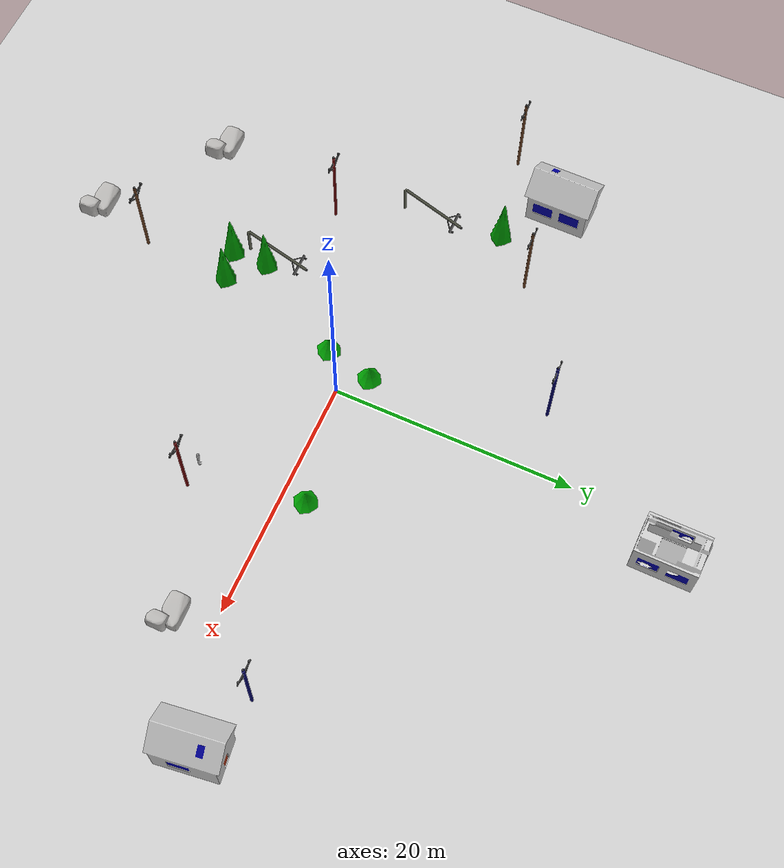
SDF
<sdf version="1.4">
 <world name="mountain_world">
  <physics type="ode"><max_step_size>0.001</max_step_size></physics>
  <scene><sky><clouds><speed>12</speed></clouds></sky></scene>
  <include><uri>model://ground_plane</uri></include>
  <include><uri>model://sun</uri></include>
  <include><name>smallbigtree01</name><uri>model://smallbigtree</uri><pose>-2.0 2.0 0 0 0 0</pose></include>
  <include><name>smallbigtree02</name><uri>model://smallbigtree</uri><pose>-3.0 -2.0 0 0 0 0</pose></include>
  <include><name>smallbigtree03</name><uri>model://smallbigtree</uri><pose>9.59 1.95 0 0 0 0</pose></include>
  <include><name>smalltree01</name><uri>model://smalltree</uri><pose>-5.5 -12.5 0 0 0 0</pose></include>
  <include><name>smalltree02</name><uri>model://smalltree</uri><pose>-8 -10 0 0 0 0</pose></include>
  <include><name>smalltree03</name><uri>model://smalltree</uri><pose>-8 -13 0 0 0 0</pose></include>
  <include><name>smalltree04</name><uri>model://smalltree</uri><pose>-18.5 6.5 0 0 0 0</pose></include>
  <include><name>hugerock01</name><uri>model://hugerock</uri><pose>22 -4 0 0 0 0</pose></include>
  <include><name>hugerock02</name><uri>model://hugerock</uri><pose>-17.02 -19.06 0 0 0 0</pose></include>
  <include><name>hugerock03</name><uri>model://hugerock</uri><pose>-7.55 -26 0 0 0 0</pose></include>
  <include><name>pylon01</name><uri>model://pylon</uri><pose>-26.0 5.0 0 0 0 0</pose></include>
  <include><name>pylon02</name><uri>model://pylon</uri><pose>-15.0 10.0 0 0 0 0</pose></include>
  <include><name>pylon03</name><uri>model://pylon</uri><pose>-6.0 -20.0 0 0 0 0</pose></include>
  <include><name>redpylon01</name><uri>model://redpylon</uri><pose>-15.0 -7.0 0 0 0 0</pose></include>
  <include><name>redpylon02</name><uri>model://redpylon</uri><pose>12 -7.0 0 0 0 0</pose></include>
  <include><name>bluepylon01</name><uri>model://bluepylon</uri><pose>25 5 0 0 0 0</pose></include>
  <include><name>bluepylon02</name><uri>model://bluepylon</uri><pose>-5.0 16.0 0 0 0 0</pose></include>
  <include><name>brokepylon01</name><uri>model://brokepylon</uri><pose>-18.0 -2.0 0 0 0 0</pose></include>
  <include><name>brokepylon02</name><uri>model://brokepylon</uri><pose>-9.0 -12.0 0 0 0 0</pose></include>
  <include><name>busy_genius</name><uri>model://genius</uri><pose>10 -7 0 0 0 10</pose></include>
  <include><name>house01</name><uri>model://house_broken</uri><pose>2.5 28.5 0 0 0 0</pose></include>
  <include><name>victim04</name><uri>model://victim_house</uri><pose>2.5 28.5 0.5 0 0 0</pose></include>
  <include><name>house02</name><uri>model://house</uri><pose>-23.0 10.0 0 0 0 0</pose></include>
  <include><name>house03</name><uri>model://house</uri><pose>29.99 3.0 0 0 0 -3</pose></include>
 </world>
</sdf>

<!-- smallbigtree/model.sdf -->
<sdf version="1.5">
  <model name="smallbigtree_model">
    <static>
      true
    </static>
    <link name="smallbigtree_link">
      <inertial>
        <mass>0.390</mass>
        <inertia>
          <ixx>0.00058</ixx>
          <ixy>0</ixy>
          <ixz>0</ixz>
          <iyy>0.00058</iyy>
          <iyz>0</iyz>
          <izz>0.00019</izz>
        </inertia>
      </inertial>
      <collision name="smallbigtree_collision">
        <geometry>
          <mesh>
            <uri>model://smallbigtree/meshes/smallbigtree.dae</uri>
          </mesh>
        </geometry>
        <surface>
          <friction>
            <ode>
              <mu>1.0</mu>
              <mu2>1.0</mu2>
            </ode>
          </friction>
          <contact>
            <ode>
              <kp>10000000.0</kp>
              <kd>1.0</kd>
              <min_depth>0.001</min_depth>
              <max_vel>0.1</max_vel>
            </ode>
          </contact>
        </surface>
      </collision>
      <visual name="smallbigtree_visual">
        <geometry>
          <mesh>
            <uri>model://smallbigtree/meshes/smallbigtree.dae</uri>
          </mesh>
        </geometry>
      </visual>
    </link>
  </model>
</sdf>

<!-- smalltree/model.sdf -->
<sdf version="1.5">
  <model name="smalltree_model">
    <static>
      true
    </static>
    <link name="smalltree_link">
      <inertial>
        <mass>0.390</mass>
        <inertia>
          <ixx>0.00058</ixx>
          <ixy>0</ixy>
          <ixz>0</ixz>
          <iyy>0.00058</iyy>
          <iyz>0</iyz>
          <izz>0.00019</izz>
        </inertia>
      </inertial>
      <collision name="smalltree_collision">
        <geometry>
          <mesh>
            <uri>model://smalltree/meshes/smalltree.dae</uri>
          </mesh>
        </geometry>
        <surface>
          <friction>
            <ode>
              <mu>1.0</mu>
              <mu2>1.0</mu2>
            </ode>
          </friction>
          <contact>
            <ode>
              <kp>10000000.0</kp>
              <kd>1.0</kd>
              <min_depth>0.001</min_depth>
              <max_vel>0.1</max_vel>
            </ode>
          </contact>
        </surface>
      </collision>
      <visual name="smalltree_visual">
        <geometry>
          <mesh>
            <uri>model://smalltree/meshes/smalltree.dae</uri>
          </mesh>
        </geometry>
      </visual>
    </link>
  </model>
</sdf>

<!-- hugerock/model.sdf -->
<sdf version="1.5">
  <model name="hugerock_model">
    <static>
      true
    </static>
    <link name="hugerock_link">
      <inertial>
        <mass>0.390</mass>
        <inertia>
          <ixx>0.00058</ixx>
          <ixy>0</ixy>
          <ixz>0</ixz>
          <iyy>0.00058</iyy>
          <iyz>0</iyz>
          <izz>0.00019</izz>
        </inertia>
      </inertial>
      <visual name="hugerock_visual">
        <geometry>
          <mesh>
            <uri>model://hugerock/meshes/hugerock.dae</uri>
          </mesh>
        </geometry>
      </visual>
    </link>
  </model>
</sdf>

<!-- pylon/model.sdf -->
<sdf version="1.5">
  <model name="pylon_model">
    <static>
      true
    </static>
    <link name="pylon_link">
      <inertial>
        <mass>0.390</mass>
        <inertia>
          <ixx>0.00058</ixx>
          <ixy>0</ixy>
          <ixz>0</ixz>
          <iyy>0.00058</iyy>
          <iyz>0</iyz>
          <izz>0.00019</izz>
        </inertia>
      </inertial>
      <collision name="pylon_collision">
        <geometry>
          <mesh>
            <uri>model://pylon/meshes/pylon.dae</uri>
          </mesh>
        </geometry>
        <surface>
          <friction>
            <ode>
              <mu>1.0</mu>
              <mu2>1.0</mu2>
            </ode>
          </friction>
          <contact>
            <ode>
              <kp>10000000.0</kp>
              <kd>1.0</kd>
              <min_depth>0.001</min_depth>
              <max_vel>0.1</max_vel>
            </ode>
          </contact>
        </surface>
      </collision>
      <visual name="pylon_visual">
        <geometry>
          <mesh>
            <uri>model://pylon/meshes/pylon.dae</uri>
          </mesh>
        </geometry>
      </visual>
    </link>
  </model>
</sdf>

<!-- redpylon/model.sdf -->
<sdf version="1.5">
  <model name="redpylon_model">
    <static>
      true
    </static>
    <link name="redpylon_link">
      <inertial>
        <mass>0.390</mass>
        <inertia>
          <ixx>0.00058</ixx>
          <ixy>0</ixy>
          <ixz>0</ixz>
          <iyy>0.00058</iyy>
          <iyz>0</iyz>
          <izz>0.00019</izz>
        </inertia>
      </inertial>
      <visual name="redpylon_visual">
        <geometry>
          <mesh>
            <uri>model://redpylon/meshes/redpylon.dae</uri>
          </mesh>
        </geometry>
      </visual>
    </link>
  </model>
</sdf>

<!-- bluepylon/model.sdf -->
<sdf version="1.5">
  <model name="bluepylon_model">
    <static>
      true
    </static>
    <link name="bluepylon_link">
      <inertial>
        <mass>0.390</mass>
        <inertia>
          <ixx>0.00058</ixx>
          <ixy>0</ixy>
          <ixz>0</ixz>
          <iyy>0.00058</iyy>
          <iyz>0</iyz>
          <izz>0.00019</izz>
        </inertia>
      </inertial>
      <visual name="bluepylon_visual">
        <geometry>
          <mesh>
            <uri>model://bluepylon/meshes/bluepylon.dae</uri>
          </mesh>
        </geometry>
      </visual>
    </link>
  </model>
</sdf>

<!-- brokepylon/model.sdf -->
<sdf version="1.5">
  <model name="brokepylon_model">
    <static>
      true
    </static>
    <link name="brokepylon_link">
      <inertial>
        <mass>0.390</mass>
        <inertia>
          <ixx>0.00058</ixx>
          <ixy>0</ixy>
          <ixz>0</ixz>
          <iyy>0.00058</iyy>
          <iyz>0</iyz>
          <izz>0.00019</izz>
        </inertia>
      </inertial>
      <collision name="brokepylon_collision">
        <geometry>
          <mesh>
            <uri>model://brokepylon/meshes/brokepylon.dae</uri>
          </mesh>
        </geometry>
        <surface>
          <friction>
            <ode>
              <mu>1.0</mu>
              <mu2>1.0</mu2>
            </ode>
          </friction>
          <contact>
            <ode>
              <kp>10000000.0</kp>
              <kd>1.0</kd>
              <min_depth>0.001</min_depth>
              <max_vel>0.1</max_vel>
            </ode>
          </contact>
        </surface>
      </collision>
      <visual name="brokepylon_visual">
        <geometry>
          <mesh>
            <uri>model://brokepylon/meshes/brokepylon.dae</uri>
          </mesh>
        </geometry>
      </visual>
    </link>
  </model>
</sdf>

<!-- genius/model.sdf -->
<sdf version="1.5">
  <model name="genius_model">
    <static>
      true
    </static>
    <link name="genius_link">
      <inertial>
        <mass>0.390</mass>
        <inertia>
          <ixx>0.00058</ixx>
          <ixy>0</ixy>
          <ixz>0</ixz>
          <iyy>0.00058</iyy>
          <iyz>0</iyz>
          <izz>0.00019</izz>
        </inertia>
      </inertial>
      <collision name="genius_collision">
        <geometry>
          <mesh>
            <uri>model://genius/meshes/genius.dae</uri>
          </mesh>
        </geometry>
        <surface>
          <friction>
            <ode>
              <mu>1.0</mu>
              <mu2>1.0</mu2>
            </ode>
          </friction>
          <contact>
            <ode>
              <kp>10000000.0</kp>
              <kd>1.0</kd>
              <min_depth>0.001</min_depth>
              <max_vel>0.1</max_vel>
            </ode>
          </contact>
        </surface>
      </collision>
      <visual name="genius_visual">
        <geometry>
          <mesh>
            <uri>model://genius/meshes/genius.dae</uri>
          </mesh>
        </geometry>
      </visual>
    </link>
  </model>
</sdf>

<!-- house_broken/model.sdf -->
<sdf version="1.5">
  <model name="house_broken_model">
    <static>
      true
    </static>
    <link name="house_link">
      <inertial>
        <mass>0.390</mass>
        <inertia>
          <ixx>0.00058</ixx>
          <ixy>0</ixy>
          <ixz>0</ixz>
          <iyy>0.00058</iyy>
          <iyz>0</iyz>
          <izz>0.00019</izz>
        </inertia>
      </inertial>
      <collision name="house_broken_collision">
        <geometry>
          <mesh>
            <uri>model://house_broken/meshes/house_broken.dae</uri>
          </mesh>
        </geometry>
        <surface>
          <friction>
            <ode>
              <mu>1.0</mu>
              <mu2>1.0</mu2>
            </ode>
          </friction>
          <contact>
            <ode>
              <kp>10000000.0</kp>
              <kd>1.0</kd>
              <min_depth>0.001</min_depth>
              <max_vel>0.1</max_vel>
            </ode>
          </contact>
        </surface>
      </collision>
      <visual name="house_broken_visual">
        <geometry>
          <mesh>
            <uri>model://house_broken/meshes/house_broken.dae</uri>
          </mesh>
        </geometry>
      </visual>
    </link>
  </model>
</sdf>

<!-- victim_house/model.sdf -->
<sdf version="1.5">
  <model name="victim_house_model">
    <static>
      true
    </static>
    <link name="victim_house_link">
      <inertial>
        <mass>0.390</mass>
        <inertia>
          <ixx>0.00058</ixx>
          <ixy>0</ixy>
          <ixz>0</ixz>
          <iyy>0.00058</iyy>
          <iyz>0</iyz>
          <izz>0.00019</izz>
        </inertia>
      </inertial>
      <collision name="victim_house_collision">
        <geometry>
          <mesh>
            <uri>model://victim_house/meshes/victim02.dae</uri>
          </mesh>
        </geometry>
        <surface>
          <friction>
            <ode>
              <mu>1.0</mu>
              <mu2>1.0</mu2>
            </ode>
          </friction>
          <contact>
            <ode>
              <kp>10000000.0</kp>
              <kd>1.0</kd>
              <min_depth>0.001</min_depth>
              <max_vel>0.1</max_vel>
            </ode>
          </contact>
        </surface>
      </collision>
      <visual name="victim_house_visual">
        <geometry>
          <mesh>
            <uri>model://victim_house/meshes/victim02.dae</uri>
          </mesh>
        </geometry>
      </visual>
    </link>
  </model>
</sdf>

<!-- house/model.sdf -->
<sdf version="1.5">
  <model name="house_model">
    <static>
      true
    </static>
    <link name="house_link">
      <inertial>
        <mass>0.390</mass>
        <inertia>
          <ixx>0.00058</ixx>
          <ixy>0</ixy>
          <ixz>0</ixz>
          <iyy>0.00058</iyy>
          <iyz>0</iyz>
          <izz>0.00019</izz>
        </inertia>
      </inertial>
      <collision name="house_collision">
        <geometry>
          <mesh>
            <uri>model://house/meshes/house.dae</uri>
          </mesh>
        </geometry>
        <surface>
          <friction>
            <ode>
              <mu>1.0</mu>
              <mu2>1.0</mu2>
            </ode>
          </friction>
          <contact>
            <ode>
              <kp>10000000.0</kp>
              <kd>1.0</kd>
              <min_depth>0.001</min_depth>
              <max_vel>0.1</max_vel>
            </ode>
          </contact>
        </surface>
      </collision>
      <visual name="house_visual">
        <geometry>
          <mesh>
            <uri>model://house/meshes/house.dae</uri>
          </mesh>
        </geometry>
      </visual>
    </link>
  </model>
</sdf>
